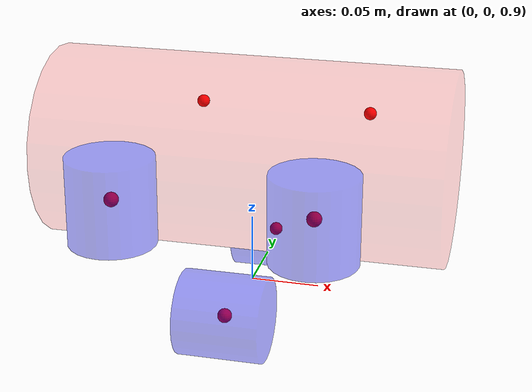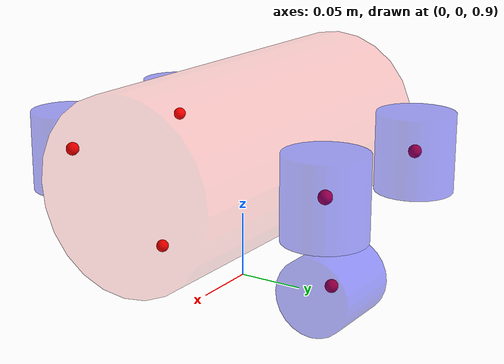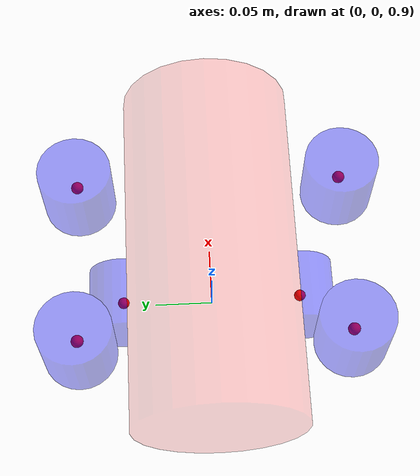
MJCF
<mujoco model="rov_sim">

  <compiler angle="degree"/>

    <option timestep="0.01" density="997" viscosity="0.001"/>

  <asset>
    <texture name="grid" type="2d" builtin="checker" rgb1=".1 .2 .3"
     rgb2=".2 .3 .4" width="300" height="300" mark="none"/>
    <material name="grid" texture="grid" texrepeat="1 1"
     texuniform="true" reflectance=".1"/>
  </asset>

  <visual>
    <scale framelength="0.2" framewidth="0.02"/>
  </visual>

  <option gravity="0 0 -0.001"/>

  <worldbody>

    <light name="light" pos="0 0 4"/>
    <geom name="floor" type="plane" pos="0 0 0" size="30 30 .01" material="grid" friction=".001"/>
    <camera name="follow_cam"
            mode="track"
            target="Thrusters"
            pos="0 -2 1.5"/>

    <body name="hull_link" pos="0 0 1" euler = "0 -90 0">
        <geom name="hull_link_geom" type="cylinder" size="0.0695 0.144" rgba="1 0 0 0.2" fluidshape="ellipsoid" fluidcoef="1.0"/>

        <body name="Thrusters" pos="0 0 0" euler = "0 90 0">
            <geom name="thrust_1_geom" type="cylinder" size="0.03 0.03" rgba="0 0 1 0.4" pos= "0. -0.078 -0.092" euler = "0 -90 0" fluidshape="ellipsoid" fluidcoef="1.0"/>
            <geom name="thrust_2_geom" type="cylinder" size="0.03 0.03" rgba="0 0 1 0.4" pos= "0. 0.078 -0.092" euler = "0 -90 0" fluidshape="ellipsoid" fluidcoef="1.0"/>
            <geom name="thrust_3_geom" type="cylinder" size="0.03 0.03" rgba="0 0 1 0.4" pos= "-0.0678 0.109 0" fluidshape="ellipsoid" fluidcoef="1.0"/>
            <geom name="thrust_4_geom" type="cylinder" size="0.03 0.03" rgba="0 0 1 0.4" pos= "0.0678 0.109 0" fluidshape="ellipsoid" fluidcoef="1.0"/>
            <geom name="thrust_5_geom" type="cylinder" size="0.03 0.03" rgba="0 0 1 0.4" pos= "-0.0678 -0.109 0" fluidshape="ellipsoid" fluidcoef="1.0"/>
            <geom name="thrust_6_geom" type="cylinder" size="0.03 0.03" rgba="0 0 1 0.4" pos= "0.0678 -0.109 0" fluidshape="ellipsoid" fluidcoef="1.0"/>

              <!-- Sites to apply force -->
            <site name="thrust_1_site" pos="0 -0.078 -0.092" size="0.005" rgba="1 0 0 1"/>
            <site name="thrust_2_site" pos="0 0.078 -0.092" size="0.005" rgba="1 0 0 1"/>
            <site name="thrust_3_site" pos="-0.0678 0.109 0" size="0.005" rgba="1 0 0 1"/>
            <site name="thrust_4_site" pos="0.0678 0.109 0" size="0.005" rgba="1 0 0 1"/>
            <site name="thrust_5_site" pos="-0.0678 -0.109 0" size="0.005" rgba="1 0 0 1"/>
            <site name="thrust_6_site" pos="0.0678 -0.109 0" size="0.005" rgba="1 0 0 1"/>

        </body>

        <joint name="first_joint" type="free"/>

    </body>

  </worldbody>

<actuator>
       <!-- Vertical thrusters -->
    <motor name="thrust1" site="thrust_1_site" gear="1 0 0"/>  <!-- Up -->
    <motor name="thrust2" site="thrust_2_site" gear="1 0 0"/>  <!-- Up -->

    <!-- Lateral thrusters -->
    <motor name="thrust3" site="thrust_3_site" gear="0 0 1"/>  <!-- Forward -->
    <motor name="thrust4" site="thrust_4_site" gear="0 0 1"/>  <!-- Forward -->

    <!-- Side thrusters -->
    <motor name="thrust5" site="thrust_5_site" gear="0 0 1"/>  <!-- Right -->
    <motor name="thrust6" site="thrust_6_site" gear="0 0 1"/>  <!-- Left -->
</actuator>

</mujoco>
